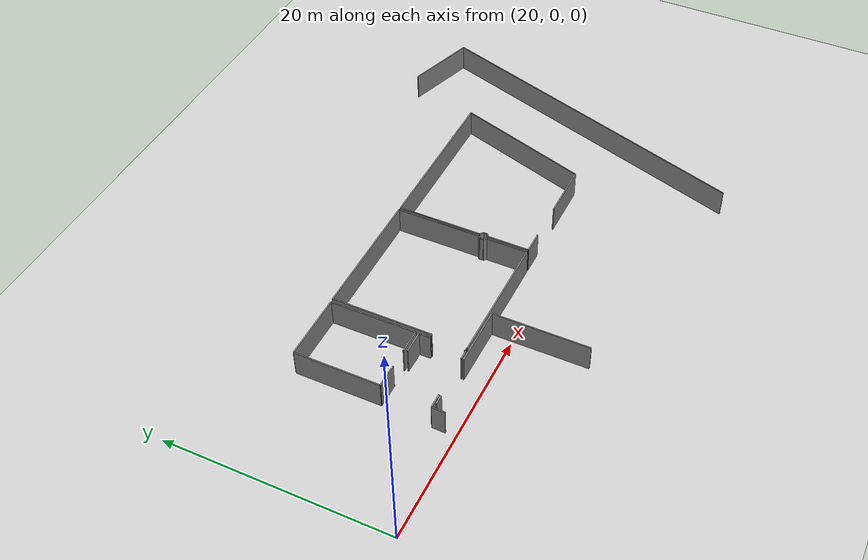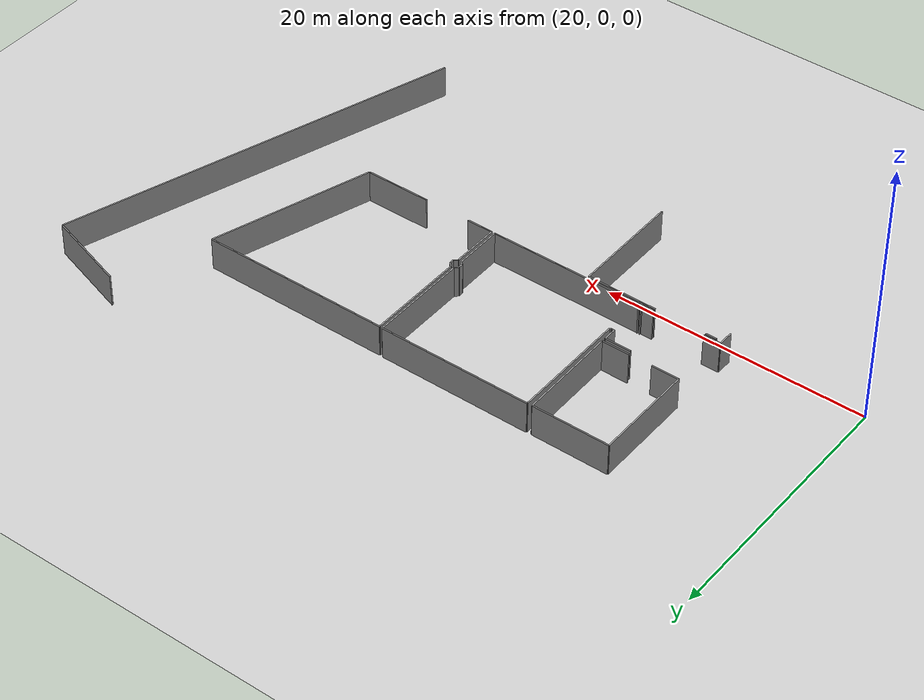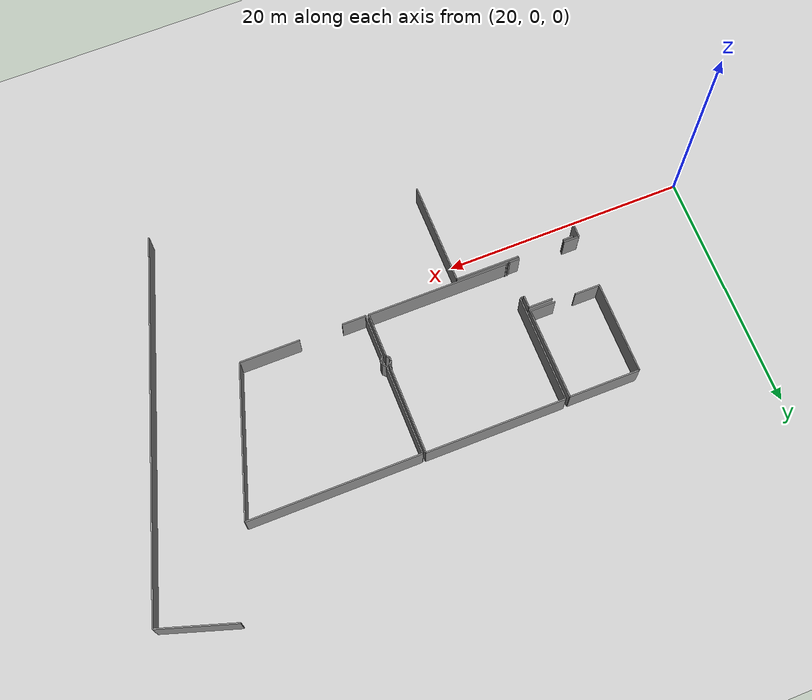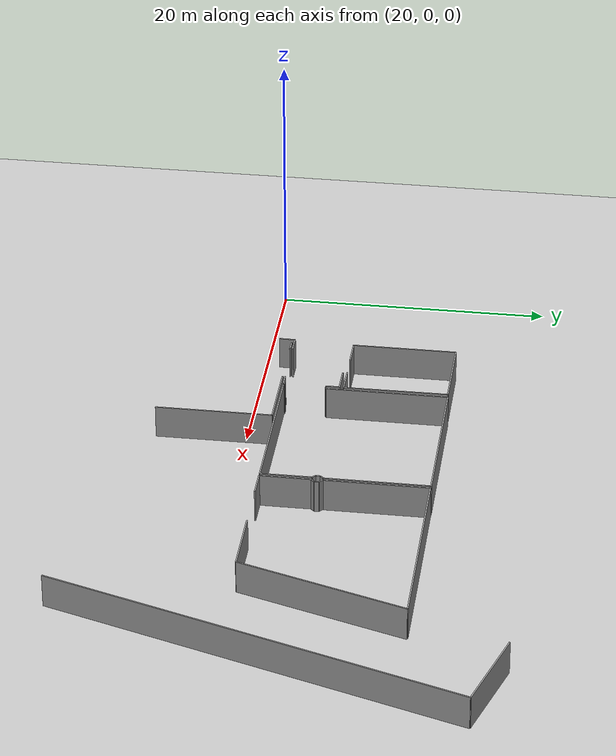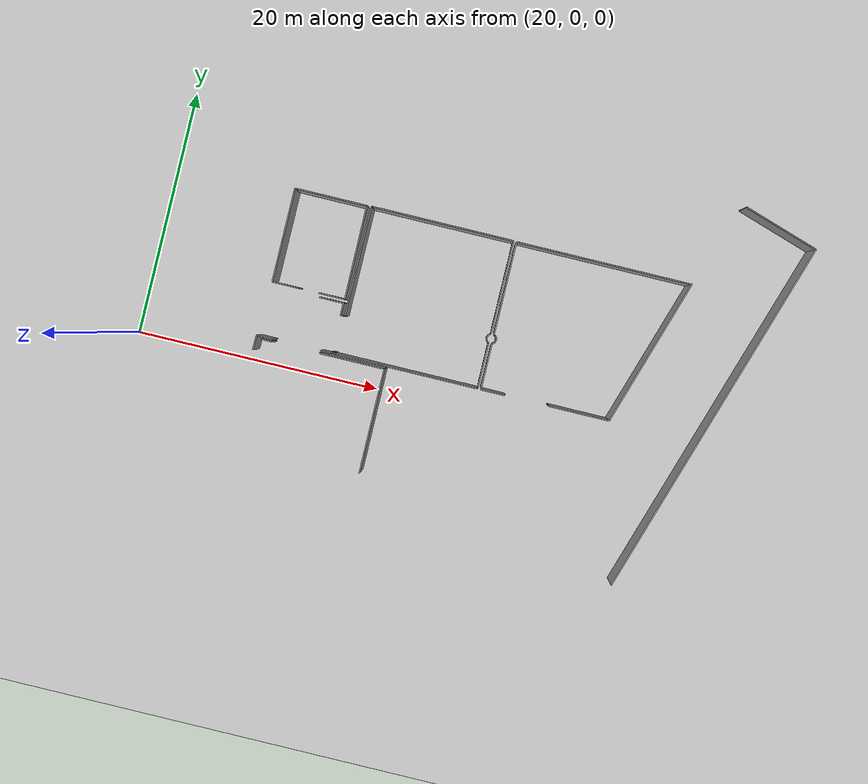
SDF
<sdf version="1.6">
 <world name="default">
  <model name="ground_plane">
   <static>1</static>
   <link name="link">
    <collision name="collision">
     <geometry><plane><normal>0 0 1</normal><size>100 100</size></plane></geometry>
     <surface><friction><ode><mu>100</mu><mu2>50</mu2></ode></friction></surface>
    </collision>
    <visual name="visual">
     <cast_shadows>0</cast_shadows>
     <geometry><plane><normal>0 0 1</normal><size>100 100</size></plane></geometry>
     <material>
      <script><uri>file://media/materials/scripts/gazebo.material</uri><name>Gazebo/Grey</name></script>
     </material>
    </visual>
   </link>
  </model>
  <model name="50041169">
   <static>1</static>
   <link name="Wall_207">
    <collision name="Wall_207_Collision">
     <geometry><box><size>0.909829510111 0.1 2.5</size></box></geometry>
     <pose>0.454914755056 0 1.25 0 0 0</pose>
    </collision>
    <visual name="Wall_207_Visual">
     <pose>0.454914755056 0 1.25 0 0 0</pose>
     <geometry><box><size>0.909829510111 0.1 2.5</size></box></geometry>
     <material>
      <script><uri>file://media/materials/scripts/gazebo.material</uri><name>Gazebo/Grey</name></script>
      <ambient>1 1 1 1</ambient>
     </material>
    </visual>
    <pose>107.467406345 -26.7824635345 0 0 0 3.14159265359</pose>
   </link>
   <link name="Wall_208">
    <collision name="Wall_208_Collision">
     <geometry><box><size>1.28965508486 0.1 2.5</size></box></geometry>
     <pose>0.644827542432 0 1.25 0 0 0</pose>
    </collision>
    <visual name="Wall_208_Visual">
     <pose>0.644827542432 0 1.25 0 0 0</pose>
     <geometry><box><size>1.28965508486 0.1 2.5</size></box></geometry>
     <material>
      <script><uri>file://media/materials/scripts/gazebo.material</uri><name>Gazebo/Grey</name></script>
      <ambient>1 1 1 1</ambient>
     </material>
    </visual>
    <pose>102.638340548 -26.7824635345 0 0 0 3.14159265359</pose>
   </link>
   <link name="Wall_234">
    <collision name="Wall_234_Collision">
     <geometry><box><size>1.99662320846 0.1 2.5</size></box></geometry>
     <pose>0.99831160423 0 1.25 0 0 0</pose>
    </collision>
    <visual name="Wall_234_Visual">
     <pose>0.99831160423 0 1.25 0 0 0</pose>
     <geometry><box><size>1.99662320846 0.1 2.5</size></box></geometry>
     <material>
      <script><uri>file://media/materials/scripts/gazebo.material</uri><name>Gazebo/Grey</name></script>
      <ambient>1 1 1 1</ambient>
     </material>
    </visual>
    <pose>105.479542483 -22.6427202214 0 0 0 0.0</pose>
   </link>
   <link name="Wall_235">
    <collision name="Wall_235_Collision">
     <geometry><box><size>1.02852500222 0.1 2.5</size></box></geometry>
     <pose>0.514262501111 0 1.25 0 0 0</pose>
    </collision>
    <visual name="Wall_235_Visual">
     <pose>0.514262501111 0 1.25 0 0 0</pose>
     <geometry><box><size>1.02852500222 0.1 2.5</size></box></geometry>
     <material>
      <script><uri>file://media/materials/scripts/gazebo.material</uri><name>Gazebo/Grey</name></script>
      <ambient>1 1 1 1</ambient>
     </material>
    </visual>
    <pose>107.476165691 -22.6427202214 0 0 0 -1.57079632679</pose>
   </link>
   <link name="Wall_236">
    <collision name="Wall_236_Collision">
     <geometry><box><size>0.135988794759 0.1 2.5</size></box></geometry>
     <pose>0.0679943973794 0 1.25 0 0 0</pose>
    </collision>
    <visual name="Wall_236_Visual">
     <pose>0.0679943973794 0 1.25 0 0 0</pose>
     <geometry><box><size>0.135988794759 0.1 2.5</size></box></geometry>
     <material>
      <script><uri>file://media/materials/scripts/gazebo.material</uri><name>Gazebo/Grey</name></script>
      <ambient>1 1 1 1</ambient>
     </material>
    </visual>
    <pose>107.476165691 -26.6467571376 0 0 0 -1.63525321701</pose>
   </link>
   <link name="Wall_277">
    <collision name="Wall_277_Collision">
     <geometry><box><size>2.11887321798 0.1 2.5</size></box></geometry>
     <pose>1.05943660899 0 1.25 0 0 0</pose>
    </collision>
    <visual name="Wall_277_Visual">
     <pose>1.05943660899 0 1.25 0 0 0</pose>
     <geometry><box><size>2.11887321798 0.1 2.5</size></box></geometry>
     <material>
      <script><uri>file://media/materials/scripts/gazebo.material</uri><name>Gazebo/Grey</name></script>
      <ambient>1 1 1 1</ambient>
     </material>
    </visual>
    <pose>107.502443731 -22.329287954 0 0 0 3.14159265359</pose>
   </link>
   <link name="Wall_278">
    <collision name="Wall_278_Collision">
     <geometry><box><size>2.08764424359 0.1 2.5</size></box></geometry>
     <pose>1.04382212179 0 1.25 0 0 0</pose>
    </collision>
    <visual name="Wall_278_Visual">
     <pose>1.04382212179 0 1.25 0 0 0</pose>
     <geometry><box><size>2.08764424359 0.1 2.5</size></box></geometry>
     <material>
      <script><uri>file://media/materials/scripts/gazebo.material</uri><name>Gazebo/Grey</name></script>
      <ambient>1 1 1 1</ambient>
     </material>
    </visual>
    <pose>103.639444987 -22.329287954 0 0 0 3.14159265359</pose>
   </link>
   <link name="Wall_279">
    <collision name="Wall_279_Collision">
     <geometry><box><size>7.65820776154 0.1 2.5</size></box></geometry>
     <pose>3.82910388077 0 1.25 0 0 0</pose>
    </collision>
    <visual name="Wall_279_Visual">
     <pose>3.82910388077 0 1.25 0 0 0</pose>
     <geometry><box><size>7.65820776154 0.1 2.5</size></box></geometry>
     <material>
      <script><uri>file://media/materials/scripts/gazebo.material</uri><name>Gazebo/Grey</name></script>
      <ambient>1 1 1 1</ambient>
     </material>
    </visual>
    <pose>101.551800744 -22.329287954 0 0 0 1.57079632679</pose>
   </link>
   <link name="Wall_280">
    <collision name="Wall_280_Collision">
     <geometry><box><size>5.8989755373 0.1 2.5</size></box></geometry>
     <pose>2.94948776865 0 1.25 0 0 0</pose>
    </collision>
    <visual name="Wall_280_Visual">
     <pose>2.94948776865 0 1.25 0 0 0</pose>
     <geometry><box><size>5.8989755373 0.1 2.5</size></box></geometry>
     <material>
      <script><uri>file://media/materials/scripts/gazebo.material</uri><name>Gazebo/Grey</name></script>
      <ambient>1 1 1 1</ambient>
     </material>
    </visual>
    <pose>101.551800744 -14.6710801925 0 0 0 0.0</pose>
   </link>
   <link name="Wall_281">
    <collision name="Wall_281_Collision">
     <geometry><box><size>7.65838205134 0.1 2.5</size></box></geometry>
     <pose>3.82919102567 0 1.25 0 0 0</pose>
    </collision>
    <visual name="Wall_281_Visual">
     <pose>3.82919102567 0 1.25 0 0 0</pose>
     <geometry><box><size>7.65838205134 0.1 2.5</size></box></geometry>
     <material>
      <script><uri>file://media/materials/scripts/gazebo.material</uri><name>Gazebo/Grey</name></script>
      <ambient>1 1 1 1</ambient>
     </material>
    </visual>
    <pose>107.450776281 -14.6710801925 0 0 0 -1.56404975276</pose>
   </link>
   <link name="Wall_309">
    <collision name="Wall_309_Collision">
     <geometry><box><size>1.17133752404 0.1 2.5</size></box></geometry>
     <pose>0.585668762019 0 1.25 0 0 0</pose>
    </collision>
    <visual name="Wall_309_Visual">
     <pose>0.585668762019 0 1.25 0 0 0</pose>
     <geometry><box><size>1.17133752404 0.1 2.5</size></box></geometry>
     <material>
      <script><uri>file://media/materials/scripts/gazebo.material</uri><name>Gazebo/Grey</name></script>
      <ambient>1 1 1 1</ambient>
     </material>
    </visual>
    <pose>101.347415993 -26.781321011 0 0 0 -1.59149797605</pose>
   </link>
   <link name="Wall_314">
    <collision name="Wall_314_Collision">
     <geometry><box><size>0.853718913841 0.1 2.5</size></box></geometry>
     <pose>0.426859456921 0 1.25 0 0 0</pose>
    </collision>
    <visual name="Wall_314_Visual">
     <pose>0.426859456921 0 1.25 0 0 0</pose>
     <geometry><box><size>0.853718913841 0.1 2.5</size></box></geometry>
     <material>
      <script><uri>file://media/materials/scripts/gazebo.material</uri><name>Gazebo/Grey</name></script>
      <ambient>1 1 1 1</ambient>
     </material>
    </visual>
    <pose>101.764817894 -26.9755499981 0 0 0 0.0</pose>
   </link>
   <link name="Wall_315">
    <collision name="Wall_315_Collision">
     <geometry><box><size>5.32111256395 0.1 2.5</size></box></geometry>
     <pose>2.66055628197 0 1.25 0 0 0</pose>
    </collision>
    <visual name="Wall_315_Visual">
     <pose>2.66055628197 0 1.25 0 0 0</pose>
     <geometry><box><size>5.32111256395 0.1 2.5</size></box></geometry>
     <material>
      <script><uri>file://media/materials/scripts/gazebo.material</uri><name>Gazebo/Grey</name></script>
      <ambient>1 1 1 1</ambient>
     </material>
    </visual>
    <pose>106.554657053 -26.9755499981 0 0 0 0.0</pose>
   </link>
   <link name="Wall_316">
    <collision name="Wall_316_Collision">
     <geometry><box><size>8.55752185254 0.1 2.5</size></box></geometry>
     <pose>4.27876092627 0 1.25 0 0 0</pose>
    </collision>
    <visual name="Wall_316_Visual">
     <pose>4.27876092627 0 1.25 0 0 0</pose>
     <geometry><box><size>8.55752185254 0.1 2.5</size></box></geometry>
     <material>
      <script><uri>file://media/materials/scripts/gazebo.material</uri><name>Gazebo/Grey</name></script>
      <ambient>1 1 1 1</ambient>
     </material>
    </visual>
    <pose>111.875769616 -26.9755499981 0 0 0 -1.56857114133</pose>
   </link>
   <link name="Wall_390">
    <collision name="Wall_390_Collision">
     <geometry><box><size>11.8054409506 0.1 2.5</size></box></geometry>
     <pose>5.90272047529 0 1.25 0 0 0</pose>
    </collision>
    <visual name="Wall_390_Visual">
     <pose>5.90272047529 0 1.25 0 0 0</pose>
     <geometry><box><size>11.8054409506 0.1 2.5</size></box></geometry>
     <material>
      <script><uri>file://media/materials/scripts/gazebo.material</uri><name>Gazebo/Grey</name></script>
      <ambient>1 1 1 1</ambient>
     </material>
    </visual>
    <pose>119.473550582 -26.7470453074 0 0 0 3.14159265359</pose>
   </link>
   <link name="Wall_391">
    <collision name="Wall_391_Collision">
     <geometry><box><size>0.0905132469247 0.1 2.5</size></box></geometry>
     <pose>0.0452566234624 0 1.25 0 0 0</pose>
    </collision>
    <visual name="Wall_391_Visual">
     <pose>0.0452566234624 0 1.25 0 0 0</pose>
     <geometry><box><size>0.0905132469247 0.1 2.5</size></box></geometry>
     <material>
      <script><uri>file://media/materials/scripts/gazebo.material</uri><name>Gazebo/Grey</name></script>
      <ambient>1 1 1 1</ambient>
     </material>
    </visual>
    <pose>107.668109631 -26.7470453074 0 0 0 1.57079632679</pose>
   </link>
   <link name="Wall_392">
    <collision name="Wall_392_Collision">
     <geometry><box><size>0.0947024995874 0.1 2.5</size></box></geometry>
     <pose>0.0473512497937 0 1.25 0 0 0</pose>
    </collision>
    <visual name="Wall_392_Visual">
     <pose>0.0473512497937 0 1.25 0 0 0</pose>
     <geometry><box><size>0.0947024995874 0.1 2.5</size></box></geometry>
     <material>
      <script><uri>file://media/materials/scripts/gazebo.material</uri><name>Gazebo/Grey</name></script>
      <ambient>1 1 1 1</ambient>
     </material>
    </visual>
    <pose>107.668109631 -23.6850824521 0 0 0 1.57079632679</pose>
   </link>
   <link name="Wall_393">
    <collision name="Wall_393_Collision">
     <geometry><box><size>0.149924466505 0.1 2.5</size></box></geometry>
     <pose>0.0749622332525 0 1.25 0 0 0</pose>
    </collision>
    <visual name="Wall_393_Visual">
     <pose>0.0749622332525 0 1.25 0 0 0</pose>
     <geometry><box><size>0.149924466505 0.1 2.5</size></box></geometry>
     <material>
      <script><uri>file://media/materials/scripts/gazebo.material</uri><name>Gazebo/Grey</name></script>
      <ambient>1 1 1 1</ambient>
     </material>
    </visual>
    <pose>107.668109631 -23.5903799525 0 0 0 0.0</pose>
   </link>
   <link name="Wall_394">
    <collision name="Wall_394_Collision">
     <geometry><box><size>8.95408325188 0.1 2.5</size></box></geometry>
     <pose>4.47704162594 0 1.25 0 0 0</pose>
    </collision>
    <visual name="Wall_394_Visual">
     <pose>4.47704162594 0 1.25 0 0 0</pose>
     <geometry><box><size>8.95408325188 0.1 2.5</size></box></geometry>
     <material>
      <script><uri>file://media/materials/scripts/gazebo.material</uri><name>Gazebo/Grey</name></script>
      <ambient>1 1 1 1</ambient>
     </material>
    </visual>
    <pose>107.818034098 -23.5903799525 0 0 0 1.57079632679</pose>
   </link>
   <link name="Wall_395">
    <collision name="Wall_395_Collision">
     <geometry><box><size>11.6555164841 0.1 2.5</size></box></geometry>
     <pose>5.82775824204 0 1.25 0 0 0</pose>
    </collision>
    <visual name="Wall_395_Visual">
     <pose>5.82775824204 0 1.25 0 0 0</pose>
     <geometry><box><size>11.6555164841 0.1 2.5</size></box></geometry>
     <material>
      <script><uri>file://media/materials/scripts/gazebo.material</uri><name>Gazebo/Grey</name></script>
      <ambient>1 1 1 1</ambient>
     </material>
    </visual>
    <pose>107.818034098 -14.6362967006 0 0 0 0.0</pose>
   </link>
   <link name="Wall_396">
    <collision name="Wall_396_Collision">
     <geometry><box><size>7.61428408211 0.1 2.5</size></box></geometry>
     <pose>3.80714204105 0 1.25 0 0 0</pose>
    </collision>
    <visual name="Wall_396_Visual">
     <pose>3.80714204105 0 1.25 0 0 0</pose>
     <geometry><box><size>7.61428408211 0.1 2.5</size></box></geometry>
     <material>
      <script><uri>file://media/materials/scripts/gazebo.material</uri><name>Gazebo/Grey</name></script>
      <ambient>1 1 1 1</ambient>
     </material>
    </visual>
    <pose>119.473550582 -14.6362967006 0 0 0 -1.57079632679</pose>
   </link>
   <link name="Wall_397">
    <collision name="Wall_397_Collision">
     <geometry><box><size>0.338415693592 0.1 2.5</size></box></geometry>
     <pose>0.169207846796 0 1.25 0 0 0</pose>
    </collision>
    <visual name="Wall_397_Visual">
     <pose>0.169207846796 0 1.25 0 0 0</pose>
     <geometry><box><size>0.338415693592 0.1 2.5</size></box></geometry>
     <material>
      <script><uri>file://media/materials/scripts/gazebo.material</uri><name>Gazebo/Grey</name></script>
      <ambient>1 1 1 1</ambient>
     </material>
    </visual>
    <pose>119.473550582 -22.2505807828 0 0 0 -2.35354197652</pose>
   </link>
   <link name="Wall_398">
    <collision name="Wall_398_Collision">
     <geometry><box><size>0.326380866541 0.1 2.5</size></box></geometry>
     <pose>0.16319043327 0 1.25 0 0 0</pose>
    </collision>
    <visual name="Wall_398_Visual">
     <pose>0.16319043327 0 1.25 0 0 0</pose>
     <geometry><box><size>0.326380866541 0.1 2.5</size></box></geometry>
     <material>
      <script><uri>file://media/materials/scripts/gazebo.material</uri><name>Gazebo/Grey</name></script>
      <ambient>1 1 1 1</ambient>
     </material>
    </visual>
    <pose>119.234890127 -22.490510708 0 0 0 -1.57079632679</pose>
   </link>
   <link name="Wall_399">
    <collision name="Wall_399_Collision">
     <geometry><box><size>0.312292866004 0.1 2.5</size></box></geometry>
     <pose>0.156146433002 0 1.25 0 0 0</pose>
    </collision>
    <visual name="Wall_399_Visual">
     <pose>0.156146433002 0 1.25 0 0 0</pose>
     <geometry><box><size>0.312292866004 0.1 2.5</size></box></geometry>
     <material>
      <script><uri>file://media/materials/scripts/gazebo.material</uri><name>Gazebo/Grey</name></script>
      <ambient>1 1 1 1</ambient>
     </material>
    </visual>
    <pose>119.234890127 -22.8168915745 0 0 0 -0.785110724486</pose>
   </link>
   <link name="Wall_400">
    <collision name="Wall_400_Collision">
     <geometry><box><size>3.70943538837 0.1 2.5</size></box></geometry>
     <pose>1.85471769418 0 1.25 0 0 0</pose>
    </collision>
    <visual name="Wall_400_Visual">
     <pose>1.85471769418 0 1.25 0 0 0</pose>
     <geometry><box><size>3.70943538837 0.1 2.5</size></box></geometry>
     <material>
      <script><uri>file://media/materials/scripts/gazebo.material</uri><name>Gazebo/Grey</name></script>
      <ambient>1 1 1 1</ambient>
     </material>
    </visual>
    <pose>119.455777995 -23.0376524951 0 0 0 -1.56600512458</pose>
   </link>
   <link name="Wall_411">
    <collision name="Wall_411_Collision">
     <geometry><box><size>6.48116124993 0.1 2.5</size></box></geometry>
     <pose>3.24058062496 0 1.25 0 0 0</pose>
    </collision>
    <visual name="Wall_411_Visual">
     <pose>3.24058062496 0 1.25 0 0 0</pose>
     <geometry><box><size>6.48116124993 0.1 2.5</size></box></geometry>
     <material>
      <script><uri>file://media/materials/scripts/gazebo.material</uri><name>Gazebo/Grey</name></script>
      <ambient>1 1 1 1</ambient>
     </material>
    </visual>
    <pose>136.897033247 -7.64087948917 0 0 0 -0.310031276277</pose>
   </link>
   <link name="Wall_412">
    <collision name="Wall_412_Collision">
     <geometry><box><size>31.3275522681 0.1 2.5</size></box></geometry>
     <pose>15.6637761341 0 1.25 0 0 0</pose>
    </collision>
    <visual name="Wall_412_Visual">
     <pose>15.6637761341 0 1.25 0 0 0</pose>
     <geometry><box><size>31.3275522681 0.1 2.5</size></box></geometry>
     <material>
      <script><uri>file://media/materials/scripts/gazebo.material</uri><name>Gazebo/Grey</name></script>
      <ambient>1 1 1 1</ambient>
     </material>
    </visual>
    <pose>143.069198837 -9.61820674597 0 0 0 -1.88036527088</pose>
   </link>
   <link name="Wall_423">
    <collision name="Wall_423_Collision">
     <geometry><box><size>4.99663590316 0.1 2.5</size></box></geometry>
     <pose>2.49831795158 0 1.25 0 0 0</pose>
    </collision>
    <visual name="Wall_423_Visual">
     <pose>2.49831795158 0 1.25 0 0 0</pose>
     <geometry><box><size>4.99663590316 0.1 2.5</size></box></geometry>
     <material>
      <script><uri>file://media/materials/scripts/gazebo.material</uri><name>Gazebo/Grey</name></script>
      <ambient>1 1 1 1</ambient>
     </material>
    </visual>
    <pose>130.271666688 -26.7568202303 0 0 0 3.14159265359</pose>
   </link>
   <link name="Wall_424">
    <collision name="Wall_424_Collision">
     <geometry><box><size>1.99306869105 0.1 2.5</size></box></geometry>
     <pose>0.996534345524 0 1.25 0 0 0</pose>
    </collision>
    <visual name="Wall_424_Visual">
     <pose>0.996534345524 0 1.25 0 0 0</pose>
     <geometry><box><size>1.99306869105 0.1 2.5</size></box></geometry>
     <material>
      <script><uri>file://media/materials/scripts/gazebo.material</uri><name>Gazebo/Grey</name></script>
      <ambient>1 1 1 1</ambient>
     </material>
    </visual>
    <pose>121.720513374 -26.7568202303 0 0 0 3.14159265359</pose>
   </link>
   <link name="Wall_425">
    <collision name="Wall_425_Collision">
     <geometry><box><size>3.70063346578 0.1 2.5</size></box></geometry>
     <pose>1.85031673289 0 1.25 0 0 0</pose>
    </collision>
    <visual name="Wall_425_Visual">
     <pose>1.85031673289 0 1.25 0 0 0</pose>
     <geometry><box><size>3.70063346578 0.1 2.5</size></box></geometry>
     <material>
      <script><uri>file://media/materials/scripts/gazebo.material</uri><name>Gazebo/Grey</name></script>
      <ambient>1 1 1 1</ambient>
     </material>
    </visual>
    <pose>119.727444683 -26.7568202303 0 0 0 1.57079632679</pose>
   </link>
   <link name="Wall_426">
    <collision name="Wall_426_Collision">
     <geometry><box><size>0.34884809225 0.1 2.5</size></box></geometry>
     <pose>0.174424046125 0 1.25 0 0 0</pose>
    </collision>
    <visual name="Wall_426_Visual">
     <pose>0.174424046125 0 1.25 0 0 0</pose>
     <geometry><box><size>0.34884809225 0.1 2.5</size></box></geometry>
     <material>
      <script><uri>file://media/materials/scripts/gazebo.material</uri><name>Gazebo/Grey</name></script>
      <ambient>1 1 1 1</ambient>
     </material>
    </visual>
    <pose>119.727444683 -23.0561867645 0 0 0 0.728757780258</pose>
   </link>
   <link name="Wall_427">
    <collision name="Wall_427_Collision">
     <geometry><box><size>0.326634760641 0.1 2.5</size></box></geometry>
     <pose>0.163317380321 0 1.25 0 0 0</pose>
    </collision>
    <visual name="Wall_427_Visual">
     <pose>0.163317380321 0 1.25 0 0 0</pose>
     <geometry><box><size>0.326634760641 0.1 2.5</size></box></geometry>
     <material>
      <script><uri>file://media/materials/scripts/gazebo.material</uri><name>Gazebo/Grey</name></script>
      <ambient>1 1 1 1</ambient>
     </material>
    </visual>
    <pose>119.987686136 -22.8238736623 0 0 0 1.57079632679</pose>
   </link>
   <link name="Wall_428">
    <collision name="Wall_428_Collision">
     <geometry><box><size>0.375079964368 0.1 2.5</size></box></geometry>
     <pose>0.187539982184 0 1.25 0 0 0</pose>
    </collision>
    <visual name="Wall_428_Visual">
     <pose>0.187539982184 0 1.25 0 0 0</pose>
     <geometry><box><size>0.375079964368 0.1 2.5</size></box></geometry>
     <material>
      <script><uri>file://media/materials/scripts/gazebo.material</uri><name>Gazebo/Grey</name></script>
      <ambient>1 1 1 1</ambient>
     </material>
    </visual>
    <pose>119.987686136 -22.4972389017 0 0 0 2.37103303722</pose>
   </link>
   <link name="Wall_429">
    <collision name="Wall_429_Collision">
     <geometry><box><size>7.5782311198 0.1 2.5</size></box></geometry>
     <pose>3.7891155599 0 1.25 0 0 0</pose>
    </collision>
    <visual name="Wall_429_Visual">
     <pose>3.7891155599 0 1.25 0 0 0</pose>
     <geometry><box><size>7.5782311198 0.1 2.5</size></box></geometry>
     <material>
      <script><uri>file://media/materials/scripts/gazebo.material</uri><name>Gazebo/Grey</name></script>
      <ambient>1 1 1 1</ambient>
     </material>
    </visual>
    <pose>119.718558389 -22.235981872 0 0 0 1.57079632679</pose>
   </link>
   <link name="Wall_430">
    <collision name="Wall_430_Collision">
     <geometry><box><size>14.3919871022 0.1 2.5</size></box></geometry>
     <pose>7.19599355109 0 1.25 0 0 0</pose>
    </collision>
    <visual name="Wall_430_Visual">
     <pose>7.19599355109 0 1.25 0 0 0</pose>
     <geometry><box><size>14.3919871022 0.1 2.5</size></box></geometry>
     <material>
      <script><uri>file://media/materials/scripts/gazebo.material</uri><name>Gazebo/Grey</name></script>
      <ambient>1 1 1 1</ambient>
     </material>
    </visual>
    <pose>119.718558389 -14.6577507522 0 0 0 0.0</pose>
   </link>
   <link name="Wall_431">
    <collision name="Wall_431_Collision">
     <geometry><box><size>12.6934815045 0.1 2.5</size></box></geometry>
     <pose>6.34674075226 0 1.25 0 0 0</pose>
    </collision>
    <visual name="Wall_431_Visual">
     <pose>6.34674075226 0 1.25 0 0 0</pose>
     <geometry><box><size>12.6934815045 0.1 2.5</size></box></geometry>
     <material>
      <script><uri>file://media/materials/scripts/gazebo.material</uri><name>Gazebo/Grey</name></script>
      <ambient>1 1 1 1</ambient>
     </material>
    </visual>
    <pose>134.110545491 -14.6577507522 0 0 0 -1.8780364436</pose>
   </link>
   <pose>-71.5 28.8982938316 0 0 0 0</pose>
  </model>
 </world>
</sdf>
